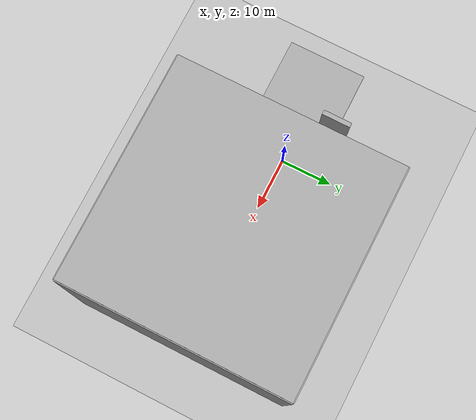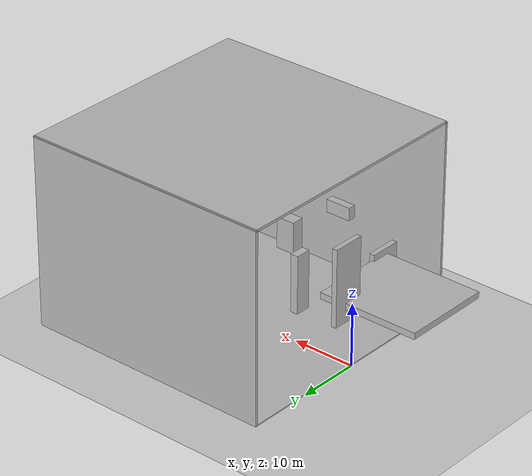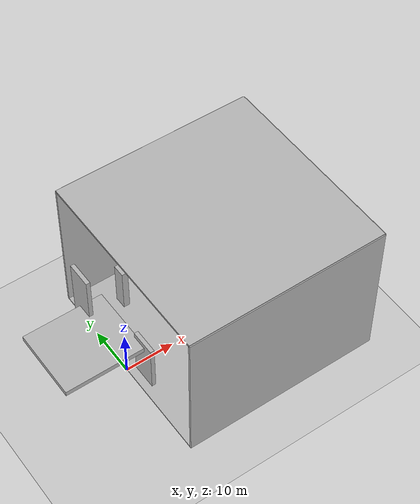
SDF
<?xml version="1.0"?>
<sdf version="1.6">
  <world name="omnilivo_regression_40x40x30">
    <include><uri>model://sun</uri></include>
    <include><uri>model://ground_plane</uri></include>

    <scene>
      <ambient>0.35 0.35 0.35 1</ambient>
      <background>0.06 0.07 0.08 1</background>
      <shadows>true</shadows>
    </scene>

    <!-- The aircraft starts on this platform at z=15 m and flies along +x. -->
    <model name="entrance_platform">
      <static>true</static>
      <pose>-8 0 14.5 0 0 0</pose>
      <link name="link">
        <collision name="collision"><geometry><box><size>16 14 1</size></box></geometry></collision>
        <visual name="visual"><geometry><box><size>16 14 1</size></box></geometry></visual>
      </link>
    </model>

    <model name="left_wall">
      <static>true</static><pose>20 20 15 0 0 0</pose>
      <link name="link">
        <collision name="collision"><geometry><box><size>40 0.4 30</size></box></geometry></collision>
        <visual name="visual"><geometry><box><size>40 0.4 30</size></box></geometry></visual>
      </link>
    </model>
    <model name="right_wall">
      <static>true</static><pose>20 -20 15 0 0 0</pose>
      <link name="link">
        <collision name="collision"><geometry><box><size>40 0.4 30</size></box></geometry></collision>
        <visual name="visual"><geometry><box><size>40 0.4 30</size></box></geometry></visual>
      </link>
    </model>
    <model name="far_wall">
      <static>true</static><pose>40 0 15 0 0 0</pose>
      <link name="link">
        <collision name="collision"><geometry><box><size>0.4 40 30</size></box></geometry></collision>
        <visual name="visual"><geometry><box><size>0.4 40 30</size></box></geometry></visual>
      </link>
    </model>
    <model name="ceiling">
      <static>true</static><pose>20 0 30 0 0 0</pose>
      <link name="link">
        <collision name="collision"><geometry><box><size>40 40 0.4</size></box></geometry></collision>
        <visual name="visual"><geometry><box><size>40 40 0.4</size></box></geometry></visual>
      </link>
    </model>
    <model name="chamber_floor">
      <static>true</static><pose>20 0 0.1 0 0 0</pose>
      <link name="link">
        <collision name="collision"><geometry><box><size>40 40 0.2</size></box></geometry></collision>
        <visual name="visual"><geometry><box><size>40 40 0.2</size></box></geometry></visual>
      </link>
    </model>

    <!-- Asymmetric, static LiDAR landmarks.  All stay more than 3 m from the
         y=0 flight corridor, so they improve observability without becoming
         artificial near-field hazards. -->
    <model name="lio_landmark_near_left_x_slab">
      <static>true</static><pose>-4 6.5 18 0 0 0</pose>
      <link name="link">
        <collision name="collision"><geometry><box><size>0.8 5.0 12.0</size></box></geometry></collision>
        <visual name="visual"><geometry><box><size>0.8 5.0 12.0</size></box></geometry></visual>
      </link>
    </model>
    <model name="lio_landmark_near_right_x_slab">
      <static>true</static><pose>0 -6.5 11 0 0 0</pose>
      <link name="link">
        <collision name="collision"><geometry><box><size>0.8 5.0 10.0</size></box></geometry></collision>
        <visual name="visual"><geometry><box><size>0.8 5.0 10.0</size></box></geometry></visual>
      </link>
    </model>
    <model name="lio_landmark_left_column">
      <static>true</static><pose>4 6.5 15 0 0 0</pose>
      <link name="link">
        <collision name="collision"><geometry><box><size>1.2 2.4 9</size></box></geometry></collision>
        <visual name="visual"><geometry><box><size>1.2 2.4 9</size></box></geometry></visual>
      </link>
    </model>
    <model name="lio_landmark_right_beam">
      <static>true</static><pose>8 -7 19 0 0 0</pose>
      <link name="link">
        <collision name="collision"><geometry><box><size>4.0 1.2 2.0</size></box></geometry></collision>
        <visual name="visual"><geometry><box><size>4.0 1.2 2.0</size></box></geometry></visual>
      </link>
    </model>
    <model name="lio_landmark_left_slab">
      <static>true</static><pose>13 8.5 13.5 0 0 0</pose>
      <link name="link">
        <collision name="collision"><geometry><box><size>1.0 4.0 11</size></box></geometry></collision>
        <visual name="visual"><geometry><box><size>1.0 4.0 11</size></box></geometry></visual>
      </link>
    </model>
    <model name="lio_landmark_right_block">
      <static>true</static><pose>18 -8 11 0 0 0</pose>
      <link name="link">
        <collision name="collision"><geometry><box><size>3.0 2.0 5.0</size></box></geometry></collision>
        <visual name="visual"><geometry><box><size>3.0 2.0 5.0</size></box></geometry></visual>
      </link>
    </model>
  </world>
</sdf>
